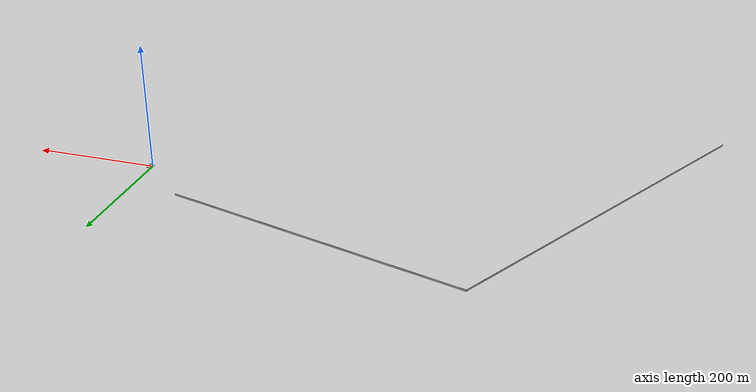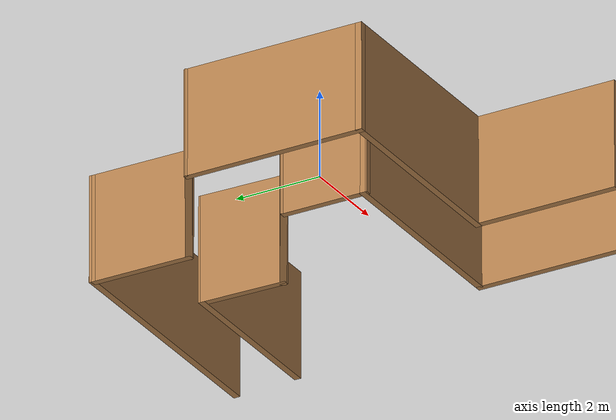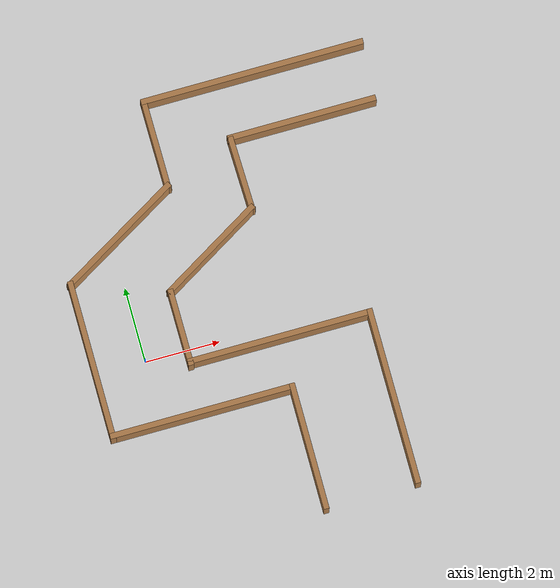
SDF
<?xml version='1.0'?>
<sdf version='1.7'>
  <model name='maze'>
    <pose>-425.303 -67.7805 0 0 -0 0</pose>
    <link name='Wall_10'>
      <collision name='Wall_10_Collision'>
        <geometry>
          <box>
            <size>3.39299 0.15 2.5</size>
          </box>
        </geometry>
        <pose>0 0 1.25 0 -0 0</pose>
      </collision>
      <visual name='Wall_10_Visual'>
        <pose>0 0 1.25 0 -0 0</pose>
        <geometry>
          <box>
            <size>3.39299 0.15 2.5</size>
          </box>
        </geometry>
        <material>
          <script>
            <uri>file://media/materials/scripts/gazebo.material</uri>
            <name>Gazebo/Wood</name>
          </script>
          <ambient>1 1 1 1</ambient>
        </material>
        <meta>
          <layer>0</layer>
        </meta>
      </visual>
      <pose>428.794 64.4196 0 0 -0 1.5708</pose>
    </link>
    <link name='Wall_11'>
      <collision name='Wall_11_Collision'>
        <geometry>
          <box>
            <size>5 0.15 2.5</size>
          </box>
        </geometry>
        <pose>0 0 1.25 0 -0 0</pose>
      </collision>
      <visual name='Wall_11_Visual'>
        <pose>0 0 1.25 0 -0 0</pose>
        <geometry>
          <box>
            <size>5 0.15 2.5</size>
          </box>
        </geometry>
        <material>
          <script>
            <uri>file://media/materials/scripts/gazebo.material</uri>
            <name>Gazebo/Wood</name>
          </script>
          <ambient>1 1 1 1</ambient>
        </material>
        <meta>
          <layer>0</layer>
        </meta>
      </visual>
      <pose>426.369 66.0411 0 0 -0 3.14159</pose>
    </link>
    <link name='Wall_12'>
      <collision name='Wall_12_Collision'>
        <geometry>
          <box>
            <size>4.25 0.15 2.5</size>
          </box>
        </geometry>
        <pose>0 0 1.25 0 -0 0</pose>
      </collision>
      <visual name='Wall_12_Visual'>
        <pose>0 0 1.25 0 -0 0</pose>
        <geometry>
          <box>
            <size>4.25 0.15 2.5</size>
          </box>
        </geometry>
        <material>
          <script>
            <uri>file://media/materials/scripts/gazebo.material</uri>
            <name>Gazebo/Wood</name>
          </script>
          <ambient>1 1 1 1</ambient>
        </material>
        <meta>
          <layer>0</layer>
        </meta>
      </visual>
      <pose>423.944 68.0911 0 0 -0 1.5708</pose>
    </link>
    <link name='Wall_13'>
      <collision name='Wall_13_Collision'>
        <geometry>
          <box>
            <size>3.75 0.15 2.5</size>
          </box>
        </geometry>
        <pose>0 0 1.25 0 -0 0</pose>
      </collision>
      <visual name='Wall_13_Visual'>
        <pose>0 0 1.25 0 -0 0</pose>
        <geometry>
          <box>
            <size>3.75 0.15 2.5</size>
          </box>
        </geometry>
        <material>
          <script>
            <uri>file://media/materials/scripts/gazebo.material</uri>
            <name>Gazebo/Wood</name>
          </script>
          <ambient>1 1 1 1</ambient>
        </material>
        <meta>
          <layer>0</layer>
        </meta>
      </visual>
      <pose>425.503 71.0411 0 0 -0 0.523599</pose>
    </link>
    <link name='Wall_14'>
      <collision name='Wall_14_Collision'>
        <geometry>
          <box>
            <size>2.42277 0.15 2.5</size>
          </box>
        </geometry>
        <pose>0 0 1.25 0 -0 0</pose>
      </collision>
      <visual name='Wall_14_Visual'>
        <pose>0 0 1.25 0 -0 0</pose>
        <geometry>
          <box>
            <size>2.42277 0.15 2.5</size>
          </box>
        </geometry>
        <material>
          <script>
            <uri>file://media/materials/scripts/gazebo.material</uri>
            <name>Gazebo/Wood</name>
          </script>
          <ambient>1 1 1 1</ambient>
        </material>
        <meta>
          <layer>0</layer>
        </meta>
      </visual>
      <pose>427.052 73.0774 0 0 -0 1.57948</pose>
    </link>
    <link name='Wall_15'>
      <collision name='Wall_15_Collision'>
        <geometry>
          <box>
            <size>6 0.15 2.5</size>
          </box>
        </geometry>
        <pose>0 0 1.25 0 -0 0</pose>
      </collision>
      <visual name='Wall_15_Visual'>
        <pose>0 0 1.25 0 -0 0</pose>
        <geometry>
          <box>
            <size>6 0.15 2.5</size>
          </box>
        </geometry>
        <material>
          <script>
            <uri>file://media/materials/scripts/gazebo.material</uri>
            <name>Gazebo/Wood</name>
          </script>
          <ambient>1 1 1 1</ambient>
        </material>
        <meta>
          <layer>0</layer>
        </meta>
      </visual>
      <pose>429.967 74.2137 0 0 -0 0</pose>
    </link>
    <link name='Wall_18'>
      <collision name='Wall_18_Collision'>
        <geometry>
          <box>
            <size>4.71641 0.15 2.5</size>
          </box>
        </geometry>
        <pose>0 0 1.25 0 -0 0</pose>
      </collision>
      <visual name='Wall_18_Visual'>
        <pose>0 0 1.25 0 -0 0</pose>
        <geometry>
          <box>
            <size>4.71641 0.15 2.5</size>
          </box>
        </geometry>
        <material>
          <script>
            <uri>file://media/materials/scripts/gazebo.material</uri>
            <name>Gazebo/Wood</name>
          </script>
          <ambient>1 1 1 1</ambient>
        </material>
        <meta>
          <layer>0</layer>
        </meta>
      </visual>
      <pose>431.263 65.0919 0 0 -0 1.5741</pose>
    </link>
    <link name='Wall_19'>
      <collision name='Wall_19_Collision'>
        <geometry>
          <box>
            <size>5 0.15 2.5</size>
          </box>
        </geometry>
        <pose>0 0 1.25 0 -0 0</pose>
      </collision>
      <visual name='Wall_19_Visual'>
        <pose>0 0 1.25 0 -0 0</pose>
        <geometry>
          <box>
            <size>5 0.15 2.5</size>
          </box>
        </geometry>
        <material>
          <script>
            <uri>file://media/materials/scripts/gazebo.material</uri>
            <name>Gazebo/Wood</name>
          </script>
          <ambient>1 1 1 1</ambient>
        </material>
        <meta>
          <layer>0</layer>
        </meta>
      </visual>
      <pose>428.831 67.3751 0 0 -0 3.14159</pose>
    </link>
    <link name='Wall_20'>
      <collision name='Wall_20_Collision'>
        <geometry>
          <box>
            <size>2.05507 0.15 2.5</size>
          </box>
        </geometry>
        <pose>0 0 1.25 0 -0 0</pose>
      </collision>
      <visual name='Wall_20_Visual'>
        <pose>0 0 1.25 0 -0 0</pose>
        <geometry>
          <box>
            <size>2.05507 0.15 2.5</size>
          </box>
        </geometry>
        <material>
          <script>
            <uri>file://media/materials/scripts/gazebo.material</uri>
            <name>Gazebo/Wood</name>
          </script>
          <ambient>1 1 1 1</ambient>
        </material>
        <meta>
          <layer>0</layer>
        </meta>
      </visual>
      <pose>426.402 68.2924 0 0 -0 1.57533</pose>
    </link>
    <link name='Wall_21'>
      <collision name='Wall_21_Collision'>
        <geometry>
          <box>
            <size>3.18104 0.15 2.5</size>
          </box>
        </geometry>
        <pose>0 0 1.25 0 -0 0</pose>
      </collision>
      <visual name='Wall_21_Visual'>
        <pose>0 0 1.25 0 -0 0</pose>
        <geometry>
          <box>
            <size>3.18104 0.15 2.5</size>
          </box>
        </geometry>
        <material>
          <script>
            <uri>file://media/materials/scripts/gazebo.material</uri>
            <name>Gazebo/Wood</name>
          </script>
          <ambient>1 1 1 1</ambient>
        </material>
        <meta>
          <layer>0</layer>
        </meta>
      </visual>
      <pose>427.704 70.0473 0 0 -0 0.530762</pose>
    </link>
    <link name='Wall_22'>
      <collision name='Wall_22_Collision'>
        <geometry>
          <box>
            <size>1.99485 0.15 2.5</size>
          </box>
        </geometry>
        <pose>0 0 1.25 0 -0 0</pose>
      </collision>
      <visual name='Wall_22_Visual'>
        <pose>0 0 1.25 0 -0 0</pose>
        <geometry>
          <box>
            <size>1.99485 0.15 2.5</size>
          </box>
        </geometry>
        <material>
          <script>
            <uri>file://media/materials/scripts/gazebo.material</uri>
            <name>Gazebo/Wood</name>
          </script>
          <ambient>1 1 1 1</ambient>
        </material>
        <meta>
          <layer>0</layer>
        </meta>
      </visual>
      <pose>428.991 71.7366 0 0 -0 1.59869</pose>
    </link>
    <link name='Wall_23'>
      <collision name='Wall_23_Collision'>
        <geometry>
          <box>
            <size>4 0.15 2.5</size>
          </box>
        </geometry>
        <pose>0 0 1.25 0 -0 0</pose>
      </collision>
      <visual name='Wall_23_Visual'>
        <pose>0 0 1.25 0 -0 0</pose>
        <geometry>
          <box>
            <size>4 0.15 2.5</size>
          </box>
        </geometry>
        <material>
          <script>
            <uri>file://media/materials/scripts/gazebo.material</uri>
            <name>Gazebo/Wood</name>
          </script>
          <ambient>1 1 1 1</ambient>
        </material>
        <meta>
          <layer>0</layer>
        </meta>
      </visual>
      <pose>430.891 72.7052 0 0 -0 0</pose>
    </link>
    <link name='Wall_5'>
      <collision name='Wall_5_Collision'>
        <geometry>
          <box>
            <size>623.25 0.15 2.5</size>
          </box>
        </geometry>
        <pose>0 0 1.25 0 -0 0</pose>
      </collision>
      <visual name='Wall_5_Visual'>
        <pose>0 0 1.25 0 -0 0</pose>
        <geometry>
          <box>
            <size>623.25 0.15 2.5</size>
          </box>
        </geometry>
        <material>
          <script>
            <uri>file://media/materials/scripts/gazebo.material</uri>
            <name>Gazebo/Grey</name>
          </script>
          <ambient>1 1 1 1</ambient>
        </material>
        <meta>
          <layer>0</layer>
        </meta>
      </visual>
      <pose>-277.089 8e-06 0 0 -0 1.0472</pose>
    </link>
    <link name='Wall_6'>
      <collision name='Wall_6_Collision'>
        <geometry>
          <box>
            <size>486.25 0.15 2.5</size>
          </box>
        </geometry>
        <pose>0 0 1.25 0 -0 0</pose>
      </collision>
      <visual name='Wall_6_Visual'>
        <pose>0 0 1.25 0 -0 0</pose>
        <geometry>
          <box>
            <size>486.25 0.15 2.5</size>
          </box>
        </geometry>
        <material>
          <script>
            <uri>file://media/materials/scripts/gazebo.material</uri>
            <name>Gazebo/Grey</name>
          </script>
          <ambient>1 1 1 1</ambient>
        </material>
        <meta>
          <layer>0</layer>
        </meta>
      </visual>
      <pose>113.454 206.904 0 0 -0 -0.261799</pose>
    </link>
    <static>1</static>
  </model>
</sdf>
